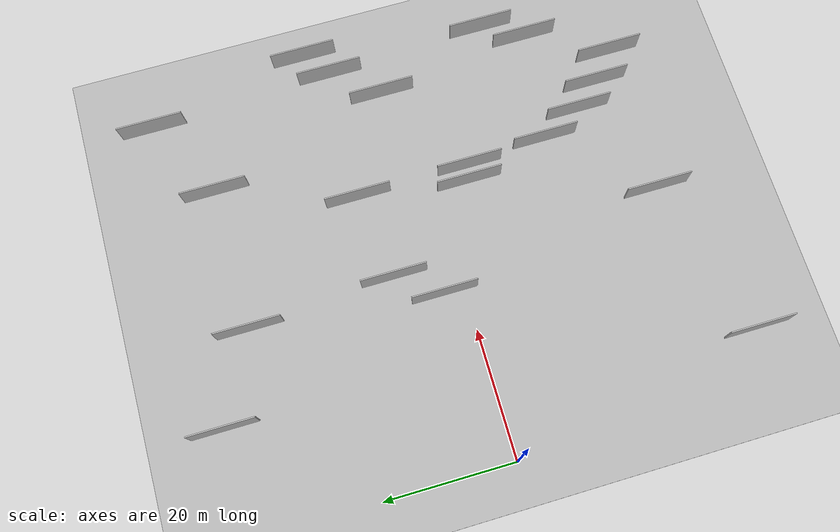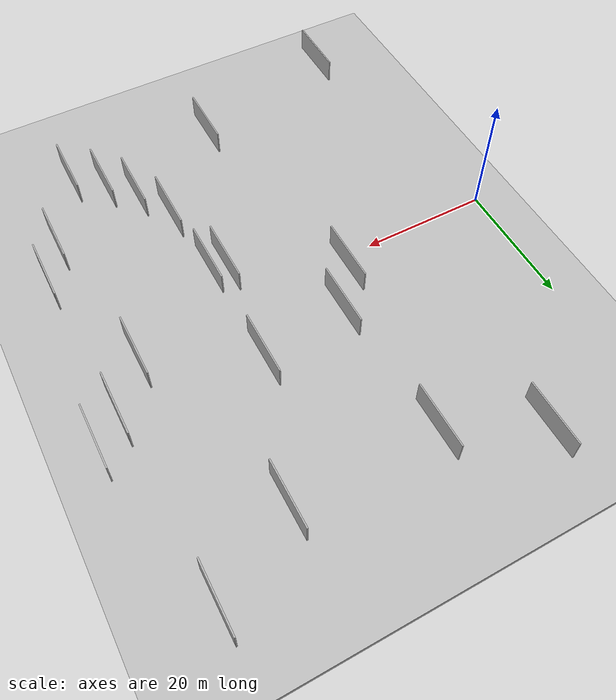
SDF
<?xml version="1.0" encoding="utf-8"?>

<sdf version="1.6">

   <world name="default">

      <gui fullscreen="0">

         <camera name="user_camera">

            <pose>-15 0 4.57585 0 0 0</pose>

            <view_controller>orbit</view_controller>

         </camera>

      </gui>

      <scene>

         <sky>

           <clouds>

             <speed>12</speed>

           </clouds>

         </sky>

         <ambient>0.4 0.4 0.4 1</ambient>

         <background>0.7 0.7 0.7 1</background>

         <shadows>1</shadows>

      </scene>

      <gravity>0 0 -9.8066</gravity>

      <magnetic_field>6e-06 2.3e-05 -4.2e-05</magnetic_field>

      <physics default="0" name="default_physics" type="ode">

         <ode>

            <solver>

               <type>quick</type>

               <iters>10</iters>

               <sor>1.0</sor>

               <use_dynamic_moi_rescaling>0</use_dynamic_moi_rescaling>

            </solver>

            <constraints>

               <cfm>0</cfm>

               <erp>0.2</erp>

               <contact_max_correcting_vel>100</contact_max_correcting_vel>

               <contact_surface_layer>0.001</contact_surface_layer>

            </constraints>

         </ode>

         <max_step_size>0.004</max_step_size>

         <real_time_factor>1</real_time_factor>

         <real_time_update_rate>250</real_time_update_rate>

      </physics>

      <light name="sun" type="directional">

         <cast_shadows>1</cast_shadows>

         <pose>0 0 10 0 0 0</pose>

         <diffuse>0.8 0.8 0.8 1</diffuse>

         <specular>0.2 0.2 0.2 1</specular>

         <attenuation>

            <range>1000</range>

            <constant>0.9</constant>

            <linear>0.01</linear>

            <quadratic>0.001</quadratic>

         </attenuation>

         <direction>-0.5 0.1 -0.9</direction>

      </light>

      <include>

         <name>ground_plane_1</name>

         <uri>model://HANNAS_ground_plane</uri>

         <pose>0 0 0  0 0 0</pose>

      </include>

      <include>

         <name>ground_plane_2</name>

         <uri>model://HANNAS_ground_plane</uri>

         <pose>100 0 0  0 0 0</pose>

      </include>

      <model name="HANNAS_wall_1">

         <static>1</static>

         <pose frame="">52.1285 -28.7580 2.5 0.000000 0.000000 1.570796</pose>

         <link name="link">

            <pose frame="">0 0 2.00 0 0 0</pose>

            <collision name="collision">

               <geometry>

                  <box>

                     <size>10.00 0.2 4.00</size>

                  </box>

               </geometry>

               <max_contacts>10</max_contacts>

               <surface>

                  <contact>

                     <ode/>

                  </contact>

                  <bounce/>

                  <friction>

                     <torsional>

                        <ode/>

                     </torsional>

                     <ode/>

                  </friction>

               </surface>

            </collision>

            <visual name="visual">

               <cast_shadows>0</cast_shadows>

               <geometry>

                  <box>

                     <size>10.00 0.2 4.00</size>

                  </box>

               </geometry>

               <material>

                  <script>

                     <uri>model://HANNAS_wall/materials/scripts</uri>

                     <uri>model://HANNAS_wall/materials/textures</uri>

                     <name>vrc/HANNAS_wall</name>

                  </script>

               </material>

            </visual>

            <self_collide>0</self_collide>

            <enable_wind>0</enable_wind>

            <kinematic>0</kinematic>

         </link>

      </model>

      <model name="HANNAS_wall_2">

         <static>1</static>

         <pose frame="">69.0554 13.7410 2.5 0.000000 0.000000 1.570796</pose>

         <link name="link">

            <pose frame="">0 0 2.00 0 0 0</pose>

            <collision name="collision">

               <geometry>

                  <box>

                     <size>10.00 0.2 4.00</size>

                  </box>

               </geometry>

               <max_contacts>10</max_contacts>

               <surface>

                  <contact>

                     <ode/>

                  </contact>

                  <bounce/>

                  <friction>

                     <torsional>

                        <ode/>

                     </torsional>

                     <ode/>

                  </friction>

               </surface>

            </collision>

            <visual name="visual">

               <cast_shadows>0</cast_shadows>

               <geometry>

                  <box>

                     <size>10.00 0.2 4.00</size>

                  </box>

               </geometry>

               <material>

                  <script>

                     <uri>model://HANNAS_wall/materials/scripts</uri>

                     <uri>model://HANNAS_wall/materials/textures</uri>

                     <name>vrc/HANNAS_wall</name>

                  </script>

               </material>

            </visual>

            <self_collide>0</self_collide>

            <enable_wind>0</enable_wind>

            <kinematic>0</kinematic>

         </link>

      </model>

      <model name="HANNAS_wall_3">

         <static>1</static>

         <pose frame="">62.7746 -20.4408 2.5 0.000000 0.000000 1.570796</pose>

         <link name="link">

            <pose frame="">0 0 2.00 0 0 0</pose>

            <collision name="collision">

               <geometry>

                  <box>

                     <size>10.00 0.2 4.00</size>

                  </box>

               </geometry>

               <max_contacts>10</max_contacts>

               <surface>

                  <contact>

                     <ode/>

                  </contact>

                  <bounce/>

                  <friction>

                     <torsional>

                        <ode/>

                     </torsional>

                     <ode/>

                  </friction>

               </surface>

            </collision>

            <visual name="visual">

               <cast_shadows>0</cast_shadows>

               <geometry>

                  <box>

                     <size>10.00 0.2 4.00</size>

                  </box>

               </geometry>

               <material>

                  <script>

                     <uri>model://HANNAS_wall/materials/scripts</uri>

                     <uri>model://HANNAS_wall/materials/textures</uri>

                     <name>vrc/HANNAS_wall</name>

                  </script>

               </material>

            </visual>

            <self_collide>0</self_collide>

            <enable_wind>0</enable_wind>

            <kinematic>0</kinematic>

         </link>

      </model>

      <model name="HANNAS_wall_4">

         <static>1</static>

         <pose frame="">44.2909 -6.0076 2.5 0.000000 0.000000 1.570796</pose>

         <link name="link">

            <pose frame="">0 0 2.00 0 0 0</pose>

            <collision name="collision">

               <geometry>

                  <box>

                     <size>10.00 0.2 4.00</size>

                  </box>

               </geometry>

               <max_contacts>10</max_contacts>

               <surface>

                  <contact>

                     <ode/>

                  </contact>

                  <bounce/>

                  <friction>

                     <torsional>

                        <ode/>

                     </torsional>

                     <ode/>

                  </friction>

               </surface>

            </collision>

            <visual name="visual">

               <cast_shadows>0</cast_shadows>

               <geometry>

                  <box>

                     <size>10.00 0.2 4.00</size>

                  </box>

               </geometry>

               <material>

                  <script>

                     <uri>model://HANNAS_wall/materials/scripts</uri>

                     <uri>model://HANNAS_wall/materials/textures</uri>

                     <name>vrc/HANNAS_wall</name>

                  </script>

               </material>

            </visual>

            <self_collide>0</self_collide>

            <enable_wind>0</enable_wind>

            <kinematic>0</kinematic>

         </link>

      </model>

      <model name="HANNAS_wall_5">

         <static>1</static>

         <pose frame="">28.8728 31.9158 2.5 0.000000 0.000000 1.570796</pose>

         <link name="link">

            <pose frame="">0 0 2.00 0 0 0</pose>

            <collision name="collision">

               <geometry>

                  <box>

                     <size>10.00 0.2 4.00</size>

                  </box>

               </geometry>

               <max_contacts>10</max_contacts>

               <surface>

                  <contact>

                     <ode/>

                  </contact>

                  <bounce/>

                  <friction>

                     <torsional>

                        <ode/>

                     </torsional>

                     <ode/>

                  </friction>

               </surface>

            </collision>

            <visual name="visual">

               <cast_shadows>0</cast_shadows>

               <geometry>

                  <box>

                     <size>10.00 0.2 4.00</size>

                  </box>

               </geometry>

               <material>

                  <script>

                     <uri>model://HANNAS_wall/materials/scripts</uri>

                     <uri>model://HANNAS_wall/materials/textures</uri>

                     <name>vrc/HANNAS_wall</name>

                  </script>

               </material>

            </visual>

            <self_collide>0</self_collide>

            <enable_wind>0</enable_wind>

            <kinematic>0</kinematic>

         </link>

      </model>

      <model name="HANNAS_wall_6">

         <static>1</static>

         <pose frame="">59.5793 3.6208 2.5 0.000000 0.000000 1.570796</pose>

         <link name="link">

            <pose frame="">0 0 2.00 0 0 0</pose>

            <collision name="collision">

               <geometry>

                  <box>

                     <size>10.00 0.2 4.00</size>

                  </box>

               </geometry>

               <max_contacts>10</max_contacts>

               <surface>

                  <contact>

                     <ode/>

                  </contact>

                  <bounce/>

                  <friction>

                     <torsional>

                        <ode/>

                     </torsional>

                     <ode/>

                  </friction>

               </surface>

            </collision>

            <visual name="visual">

               <cast_shadows>0</cast_shadows>

               <geometry>

                  <box>

                     <size>10.00 0.2 4.00</size>

                  </box>

               </geometry>

               <material>

                  <script>

                     <uri>model://HANNAS_wall/materials/scripts</uri>

                     <uri>model://HANNAS_wall/materials/textures</uri>

                     <name>vrc/HANNAS_wall</name>

                  </script>

               </material>

            </visual>

            <self_collide>0</self_collide>

            <enable_wind>0</enable_wind>

            <kinematic>0</kinematic>

         </link>

      </model>

      <model name="HANNAS_wall_7">

         <static>1</static>

         <pose frame="">56.5368 -32.3315 2.5 0.000000 0.000000 1.570796</pose>

         <link name="link">

            <pose frame="">0 0 2.00 0 0 0</pose>

            <collision name="collision">

               <geometry>

                  <box>

                     <size>10.00 0.2 4.00</size>

                  </box>

               </geometry>

               <max_contacts>10</max_contacts>

               <surface>

                  <contact>

                     <ode/>

                  </contact>

                  <bounce/>

                  <friction>

                     <torsional>

                        <ode/>

                     </torsional>

                     <ode/>

                  </friction>

               </surface>

            </collision>

            <visual name="visual">

               <cast_shadows>0</cast_shadows>

               <geometry>

                  <box>

                     <size>10.00 0.2 4.00</size>

                  </box>

               </geometry>

               <material>

                  <script>

                     <uri>model://HANNAS_wall/materials/scripts</uri>

                     <uri>model://HANNAS_wall/materials/textures</uri>

                     <name>vrc/HANNAS_wall</name>

                  </script>

               </material>

            </visual>

            <self_collide>0</self_collide>

            <enable_wind>0</enable_wind>

            <kinematic>0</kinematic>

         </link>

      </model>

      <model name="HANNAS_wall_8">

         <static>1</static>

         <pose frame="">26.0133 3.2339 2.5 0.000000 0.000000 1.570796</pose>

         <link name="link">

            <pose frame="">0 0 2.00 0 0 0</pose>

            <collision name="collision">

               <geometry>

                  <box>

                     <size>10.00 0.2 4.00</size>

                  </box>

               </geometry>

               <max_contacts>10</max_contacts>

               <surface>

                  <contact>

                     <ode/>

                  </contact>

                  <bounce/>

                  <friction>

                     <torsional>

                        <ode/>

                     </torsional>

                     <ode/>

                  </friction>

               </surface>

            </collision>

            <visual name="visual">

               <cast_shadows>0</cast_shadows>

               <geometry>

                  <box>

                     <size>10.00 0.2 4.00</size>

                  </box>

               </geometry>

               <material>

                  <script>

                     <uri>model://HANNAS_wall/materials/scripts</uri>

                     <uri>model://HANNAS_wall/materials/textures</uri>

                     <name>vrc/HANNAS_wall</name>

                  </script>

               </material>

            </visual>

            <self_collide>0</self_collide>

            <enable_wind>0</enable_wind>

            <kinematic>0</kinematic>

         </link>

      </model>

      <model name="HANNAS_wall_9">

         <static>1</static>

         <pose frame="">32.7860 -32.1256 2.5 0.000000 0.000000 1.570796</pose>

         <link name="link">

            <pose frame="">0 0 2.00 0 0 0</pose>

            <collision name="collision">

               <geometry>

                  <box>

                     <size>10.00 0.2 4.00</size>

                  </box>

               </geometry>

               <max_contacts>10</max_contacts>

               <surface>

                  <contact>

                     <ode/>

                  </contact>

                  <bounce/>

                  <friction>

                     <torsional>

                        <ode/>

                     </torsional>

                     <ode/>

                  </friction>

               </surface>

            </collision>

            <visual name="visual">

               <cast_shadows>0</cast_shadows>

               <geometry>

                  <box>

                     <size>10.00 0.2 4.00</size>

                  </box>

               </geometry>

               <material>

                  <script>

                     <uri>model://HANNAS_wall/materials/scripts</uri>

                     <uri>model://HANNAS_wall/materials/textures</uri>

                     <name>vrc/HANNAS_wall</name>

                  </script>

               </material>

            </visual>

            <self_collide>0</self_collide>

            <enable_wind>0</enable_wind>

            <kinematic>0</kinematic>

         </link>

      </model>

      <model name="HANNAS_wall_10">

         <static>1</static>

         <pose frame="">44.0223 11.5469 2.5 0.000000 0.000000 1.570796</pose>

         <link name="link">

            <pose frame="">0 0 2.00 0 0 0</pose>

            <collision name="collision">

               <geometry>

                  <box>

                     <size>10.00 0.2 4.00</size>

                  </box>

               </geometry>

               <max_contacts>10</max_contacts>

               <surface>

                  <contact>

                     <ode/>

                  </contact>

                  <bounce/>

                  <friction>

                     <torsional>

                        <ode/>

                     </torsional>

                     <ode/>

                  </friction>

               </surface>

            </collision>

            <visual name="visual">

               <cast_shadows>0</cast_shadows>

               <geometry>

                  <box>

                     <size>10.00 0.2 4.00</size>

                  </box>

               </geometry>

               <material>

                  <script>

                     <uri>model://HANNAS_wall/materials/scripts</uri>

                     <uri>model://HANNAS_wall/materials/textures</uri>

                     <name>vrc/HANNAS_wall</name>

                  </script>

               </material>

            </visual>

            <self_collide>0</self_collide>

            <enable_wind>0</enable_wind>

            <kinematic>0</kinematic>

         </link>

      </model>

      <model name="HANNAS_wall_11">

         <static>1</static>

         <pose frame="">41.8833 -5.2509 2.5 0.000000 0.000000 1.570796</pose>

         <link name="link">

            <pose frame="">0 0 2.00 0 0 0</pose>

            <collision name="collision">

               <geometry>

                  <box>

                     <size>10.00 0.2 4.00</size>

                  </box>

               </geometry>

               <max_contacts>10</max_contacts>

               <surface>

                  <contact>

                     <ode/>

                  </contact>

                  <bounce/>

                  <friction>

                     <torsional>

                        <ode/>

                     </torsional>

                     <ode/>

                  </friction>

               </surface>

            </collision>

            <visual name="visual">

               <cast_shadows>0</cast_shadows>

               <geometry>

                  <box>

                     <size>10.00 0.2 4.00</size>

                  </box>

               </geometry>

               <material>

                  <script>

                     <uri>model://HANNAS_wall/materials/scripts</uri>

                     <uri>model://HANNAS_wall/materials/textures</uri>

                     <name>vrc/HANNAS_wall</name>

                  </script>

               </material>

            </visual>

            <self_collide>0</self_collide>

            <enable_wind>0</enable_wind>

            <kinematic>0</kinematic>

         </link>

      </model>

      <model name="HANNAS_wall_12">

         <static>1</static>

         <pose frame="">48.4264 -24.7357 2.5 0.000000 0.000000 1.570796</pose>

         <link name="link">

            <pose frame="">0 0 2.00 0 0 0</pose>

            <collision name="collision">

               <geometry>

                  <box>

                     <size>10.00 0.2 4.00</size>

                  </box>

               </geometry>

               <max_contacts>10</max_contacts>

               <surface>

                  <contact>

                     <ode/>

                  </contact>

                  <bounce/>

                  <friction>

                     <torsional>

                        <ode/>

                     </torsional>

                     <ode/>

                  </friction>

               </surface>

            </collision>

            <visual name="visual">

               <cast_shadows>0</cast_shadows>

               <geometry>

                  <box>

                     <size>10.00 0.2 4.00</size>

                  </box>

               </geometry>

               <material>

                  <script>

                     <uri>model://HANNAS_wall/materials/scripts</uri>

                     <uri>model://HANNAS_wall/materials/textures</uri>

                     <name>vrc/HANNAS_wall</name>

                  </script>

               </material>

            </visual>

            <self_collide>0</self_collide>

            <enable_wind>0</enable_wind>

            <kinematic>0</kinematic>

         </link>

      </model>

      <model name="HANNAS_wall_13">

         <static>1</static>

         <pose frame="">63.7238 38.9453 2.5 0.000000 0.000000 1.570796</pose>

         <link name="link">

            <pose frame="">0 0 2.00 0 0 0</pose>

            <collision name="collision">

               <geometry>

                  <box>

                     <size>10.00 0.2 4.00</size>

                  </box>

               </geometry>

               <max_contacts>10</max_contacts>

               <surface>

                  <contact>

                     <ode/>

                  </contact>

                  <bounce/>

                  <friction>

                     <torsional>

                        <ode/>

                     </torsional>

                     <ode/>

                  </friction>

               </surface>

            </collision>

            <visual name="visual">

               <cast_shadows>0</cast_shadows>

               <geometry>

                  <box>

                     <size>10.00 0.2 4.00</size>

                  </box>

               </geometry>

               <material>

                  <script>

                     <uri>model://HANNAS_wall/materials/scripts</uri>

                     <uri>model://HANNAS_wall/materials/textures</uri>

                     <name>vrc/HANNAS_wall</name>

                  </script>

               </material>

            </visual>

            <self_collide>0</self_collide>

            <enable_wind>0</enable_wind>

            <kinematic>0</kinematic>

         </link>

      </model>

      <model name="HANNAS_wall_14">

         <static>1</static>

         <pose frame="">66.2286 -14.3707 2.5 0.000000 0.000000 1.570796</pose>

         <link name="link">

            <pose frame="">0 0 2.00 0 0 0</pose>

            <collision name="collision">

               <geometry>

                  <box>

                     <size>10.00 0.2 4.00</size>

                  </box>

               </geometry>

               <max_contacts>10</max_contacts>

               <surface>

                  <contact>

                     <ode/>

                  </contact>

                  <bounce/>

                  <friction>

                     <torsional>

                        <ode/>

                     </torsional>

                     <ode/>

                  </friction>

               </surface>

            </collision>

            <visual name="visual">

               <cast_shadows>0</cast_shadows>

               <geometry>

                  <box>

                     <size>10.00 0.2 4.00</size>

                  </box>

               </geometry>

               <material>

                  <script>

                     <uri>model://HANNAS_wall/materials/scripts</uri>

                     <uri>model://HANNAS_wall/materials/textures</uri>

                     <name>vrc/HANNAS_wall</name>

                  </script>

               </material>

            </visual>

            <self_collide>0</self_collide>

            <enable_wind>0</enable_wind>

            <kinematic>0</kinematic>

         </link>

      </model>

      <model name="HANNAS_wall_15">

         <static>1</static>

         <pose frame="">8.2345 -38.9565 2.5 0.000000 0.000000 1.570796</pose>

         <link name="link">

            <pose frame="">0 0 2.00 0 0 0</pose>

            <collision name="collision">

               <geometry>

                  <box>

                     <size>10.00 0.2 4.00</size>

                  </box>

               </geometry>

               <max_contacts>10</max_contacts>

               <surface>

                  <contact>

                     <ode/>

                  </contact>

                  <bounce/>

                  <friction>

                     <torsional>

                        <ode/>

                     </torsional>

                     <ode/>

                  </friction>

               </surface>

            </collision>

            <visual name="visual">

               <cast_shadows>0</cast_shadows>

               <geometry>

                  <box>

                     <size>10.00 0.2 4.00</size>

                  </box>

               </geometry>

               <material>

                  <script>

                     <uri>model://HANNAS_wall/materials/scripts</uri>

                     <uri>model://HANNAS_wall/materials/textures</uri>

                     <name>vrc/HANNAS_wall</name>

                  </script>

               </material>

            </visual>

            <self_collide>0</self_collide>

            <enable_wind>0</enable_wind>

            <kinematic>0</kinematic>

         </link>

      </model>

      <model name="HANNAS_wall_16">

         <static>1</static>

         <pose frame="">50.9264 32.0033 2.5 0.000000 0.000000 1.570796</pose>

         <link name="link">

            <pose frame="">0 0 2.00 0 0 0</pose>

            <collision name="collision">

               <geometry>

                  <box>

                     <size>10.00 0.2 4.00</size>

                  </box>

               </geometry>

               <max_contacts>10</max_contacts>

               <surface>

                  <contact>

                     <ode/>

                  </contact>

                  <bounce/>

                  <friction>

                     <torsional>

                        <ode/>

                     </torsional>

                     <ode/>

                  </friction>

               </surface>

            </collision>

            <visual name="visual">

               <cast_shadows>0</cast_shadows>

               <geometry>

                  <box>

                     <size>10.00 0.2 4.00</size>

                  </box>

               </geometry>

               <material>

                  <script>

                     <uri>model://HANNAS_wall/materials/scripts</uri>

                     <uri>model://HANNAS_wall/materials/textures</uri>

                     <name>vrc/HANNAS_wall</name>

                  </script>

               </material>

            </visual>

            <self_collide>0</self_collide>

            <enable_wind>0</enable_wind>

            <kinematic>0</kinematic>

         </link>

      </model>

      <model name="HANNAS_wall_17">

         <static>1</static>

         <pose frame="">45.2515 -18.3288 2.5 0.000000 0.000000 1.570796</pose>

         <link name="link">

            <pose frame="">0 0 2.00 0 0 0</pose>

            <collision name="collision">

               <geometry>

                  <box>

                     <size>10.00 0.2 4.00</size>

                  </box>

               </geometry>

               <max_contacts>10</max_contacts>

               <surface>

                  <contact>

                     <ode/>

                  </contact>

                  <bounce/>

                  <friction>

                     <torsional>

                        <ode/>

                     </torsional>

                     <ode/>

                  </friction>

               </surface>

            </collision>

            <visual name="visual">

               <cast_shadows>0</cast_shadows>

               <geometry>

                  <box>

                     <size>10.00 0.2 4.00</size>

                  </box>

               </geometry>

               <material>

                  <script>

                     <uri>model://HANNAS_wall/materials/scripts</uri>

                     <uri>model://HANNAS_wall/materials/textures</uri>

                     <name>vrc/HANNAS_wall</name>

                  </script>

               </material>

            </visual>

            <self_collide>0</self_collide>

            <enable_wind>0</enable_wind>

            <kinematic>0</kinematic>

         </link>

      </model>

      <model name="HANNAS_wall_18">

         <static>1</static>

         <pose frame="">15.7720 38.6179 2.5 0.000000 0.000000 1.570796</pose>

         <link name="link">

            <pose frame="">0 0 2.00 0 0 0</pose>

            <collision name="collision">

               <geometry>

                  <box>

                     <size>10.00 0.2 4.00</size>

                  </box>

               </geometry>

               <max_contacts>10</max_contacts>

               <surface>

                  <contact>

                     <ode/>

                  </contact>

                  <bounce/>

                  <friction>

                     <torsional>

                        <ode/>

                     </torsional>

                     <ode/>

                  </friction>

               </surface>

            </collision>

            <visual name="visual">

               <cast_shadows>0</cast_shadows>

               <geometry>

                  <box>

                     <size>10.00 0.2 4.00</size>

                  </box>

               </geometry>

               <material>

                  <script>

                     <uri>model://HANNAS_wall/materials/scripts</uri>

                     <uri>model://HANNAS_wall/materials/textures</uri>

                     <name>vrc/HANNAS_wall</name>

                  </script>

               </material>

            </visual>

            <self_collide>0</self_collide>

            <enable_wind>0</enable_wind>

            <kinematic>0</kinematic>

         </link>

      </model>

      <model name="HANNAS_wall_19">

         <static>1</static>

         <pose frame="">30.4890 9.6931 2.5 0.000000 0.000000 1.570796</pose>

         <link name="link">

            <pose frame="">0 0 2.00 0 0 0</pose>

            <collision name="collision">

               <geometry>

                  <box>

                     <size>10.00 0.2 4.00</size>

                  </box>

               </geometry>

               <max_contacts>10</max_contacts>

               <surface>

                  <contact>

                     <ode/>

                  </contact>

                  <bounce/>

                  <friction>

                     <torsional>

                        <ode/>

                     </torsional>

                     <ode/>

                  </friction>

               </surface>

            </collision>

            <visual name="visual">

               <cast_shadows>0</cast_shadows>

               <geometry>

                  <box>

                     <size>10.00 0.2 4.00</size>

                  </box>

               </geometry>

               <material>

                  <script>

                     <uri>model://HANNAS_wall/materials/scripts</uri>

                     <uri>model://HANNAS_wall/materials/textures</uri>

                     <name>vrc/HANNAS_wall</name>

                  </script>

               </material>

            </visual>

            <self_collide>0</self_collide>

            <enable_wind>0</enable_wind>

            <kinematic>0</kinematic>

         </link>

      </model>

      <model name="HANNAS_wall_20">

         <static>1</static>

         <pose frame="">65.0079 10.5568 2.5 0.000000 0.000000 1.570796</pose>

         <link name="link">

            <pose frame="">0 0 2.00 0 0 0</pose>

            <collision name="collision">

               <geometry>

                  <box>

                     <size>10.00 0.2 4.00</size>

                  </box>

               </geometry>

               <max_contacts>10</max_contacts>

               <surface>

                  <contact>

                     <ode/>

                  </contact>

                  <bounce/>

                  <friction>

                     <torsional>

                        <ode/>

                     </torsional>

                     <ode/>

                  </friction>

               </surface>

            </collision>

            <visual name="visual">

               <cast_shadows>0</cast_shadows>

               <geometry>

                  <box>

                     <size>10.00 0.2 4.00</size>

                  </box>

               </geometry>

               <material>

                  <script>

                     <uri>model://HANNAS_wall/materials/scripts</uri>

                     <uri>model://HANNAS_wall/materials/textures</uri>

                     <name>vrc/HANNAS_wall</name>

                  </script>

               </material>

            </visual>

            <self_collide>0</self_collide>

            <enable_wind>0</enable_wind>

            <kinematic>0</kinematic>

         </link>

      </model>

   </world>

</sdf>

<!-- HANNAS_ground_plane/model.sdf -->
<sdf version="1.4">
<model name="HANNAS_ground_plane">
  <static>true</static>
    <link name="link">
      <collision name="collision">
        <geometry>
          <plane>
            <normal>0 0 1</normal>
            <size>1000 1000</size>
          </plane>
        </geometry>
        <surface>
          <friction>
            <ode>
              <mu>100</mu>
              <mu2>50</mu2>
            </ode>
          </friction>
        </surface>
      </collision>
      <visual name="visual">
        <cast_shadows>false</cast_shadows>
        <geometry>
          <plane>
            <normal>0 0 1</normal>
            <size>1000 1000</size>
          </plane>
        </geometry>
        <material>
          <script>
            <uri>model://HANNAS_ground_plane/materials/scripts/HANNAS_ground_plane.material</uri>
	    <uri>model://HANNAS_ground_plane/materials/textures</uri>
            <name>HANNASGroundPlane/Image</name>
          </script>
        </material>
      </visual>
    </link>
  </model>
</sdf>
